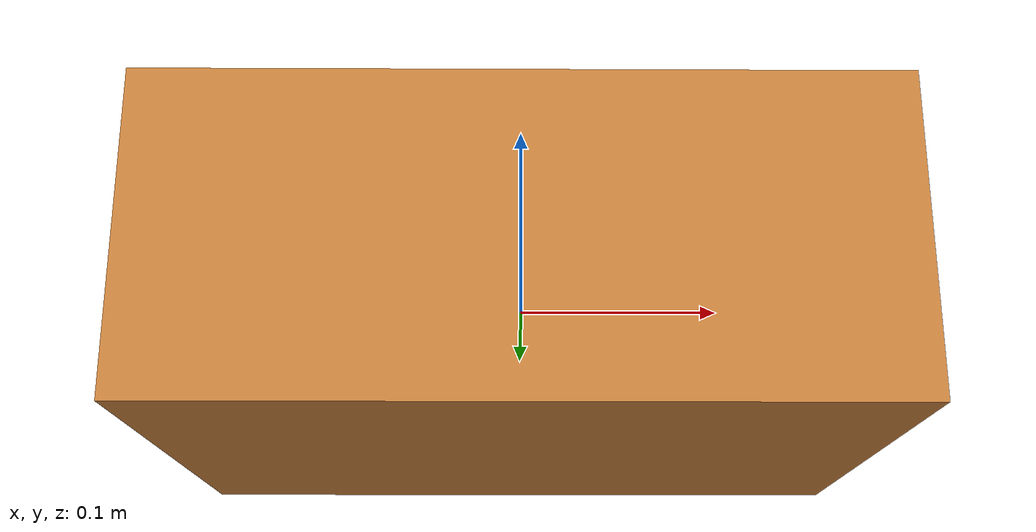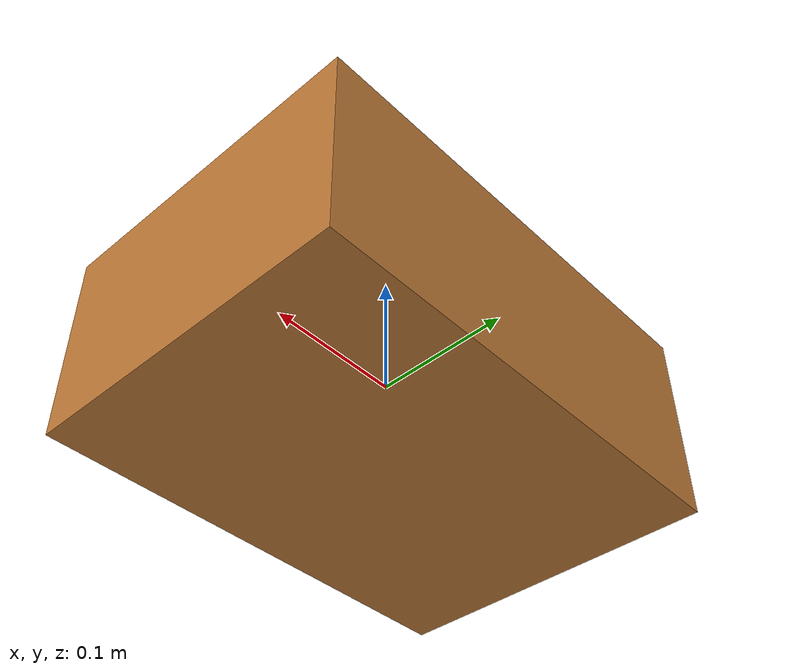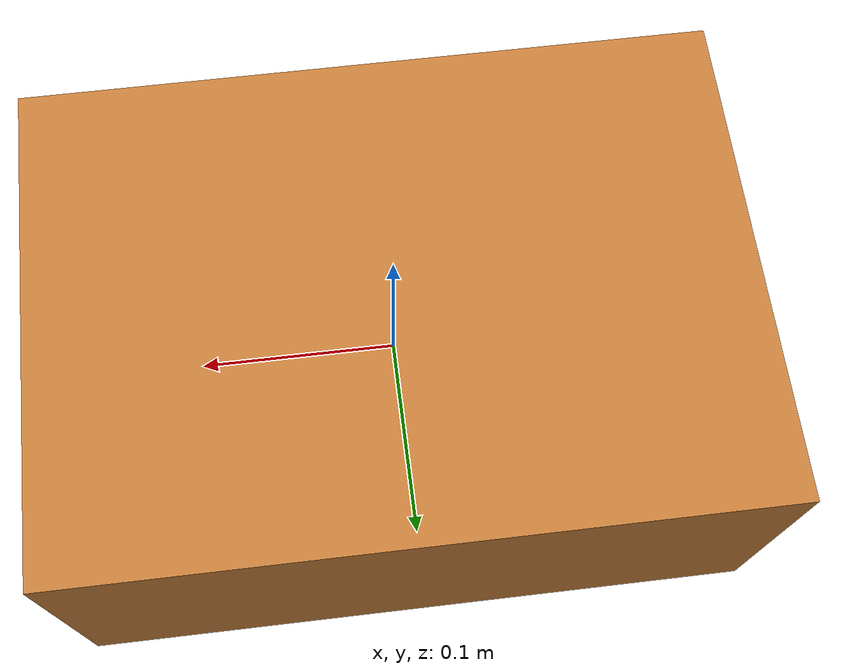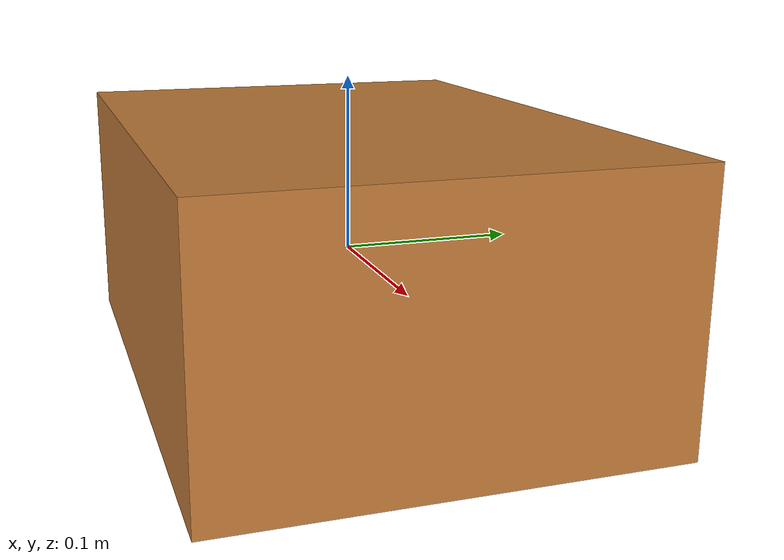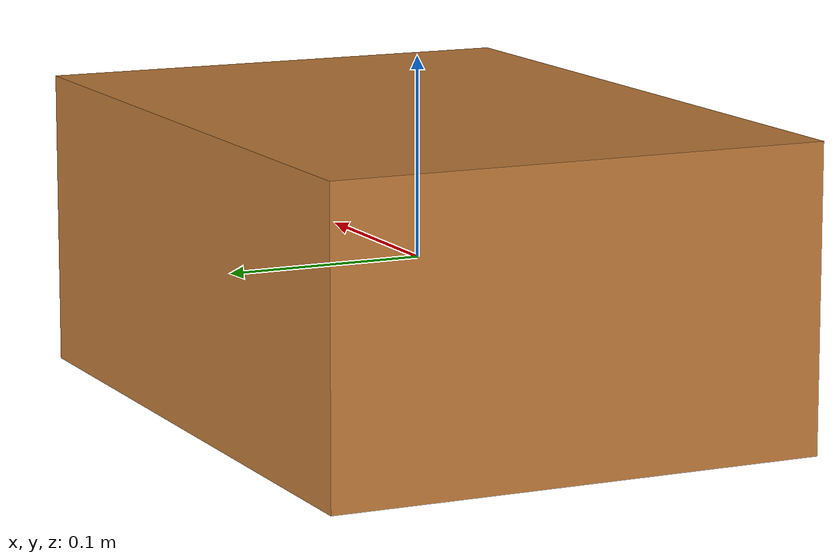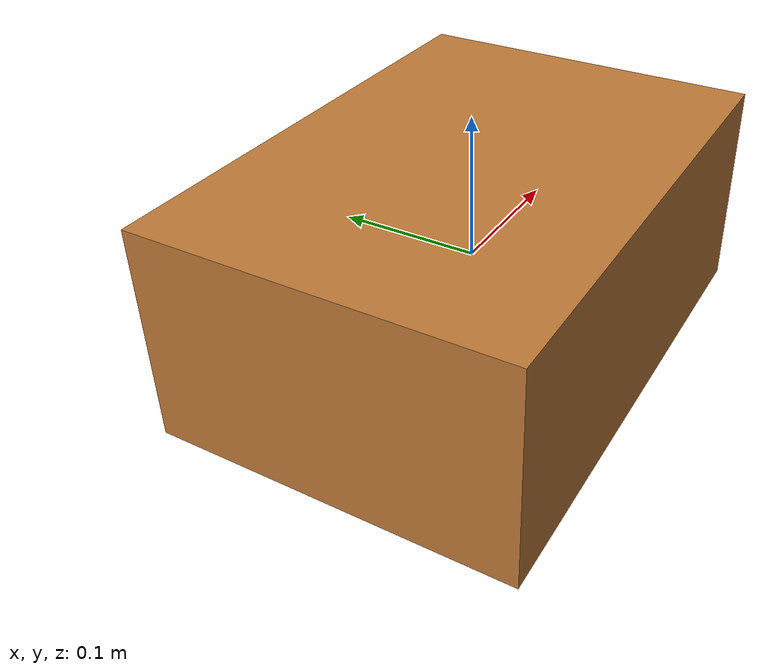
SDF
<?xml version="1.0"?>
<sdf version="1.8">
  <model name="generator_box">
    <static>false</static>
    <link name="box_link">
      <inertial>
        <mass>5.637132</mass>
        <inertia><ixx>0.03992968</ixx><iyy>0.06811534</iyy><izz>0.08690578</izz><ixy>0</ixy><ixz>0</ixz><iyz>0</iyz></inertia>
      </inertial>
      <collision name="collision">
        <geometry><box><size>0.3500 0.2500 0.1500</size></box></geometry>
        <surface><friction><ode><mu>0.9</mu><mu2>0.9</mu2></ode></friction></surface>
      </collision>
      <visual name="visual">
        <geometry><box><size>0.3500 0.2500 0.1500</size></box></geometry>
        <material><ambient>0.55 0.32 0.12 1</ambient><diffuse>0.75 0.48 0.22 1</diffuse></material>
      </visual>
    </link>
    <!-- Dev/test-only ground-truth pose (perception uses the cameras). Gazebo 6 publishes the
         model's own pose only with publish_nested_model_pose=true. -->
    <plugin filename="ignition-gazebo-pose-publisher-system" name="gz::sim::systems::PosePublisher">
      <publish_model_pose>true</publish_model_pose>
      <publish_link_pose>false</publish_link_pose>
      <publish_collision_pose>false</publish_collision_pose>
      <publish_visual_pose>false</publish_visual_pose>
      <publish_nested_model_pose>true</publish_nested_model_pose>
      <update_frequency>30</update_frequency>
      <use_pose_vector_msg>false</use_pose_vector_msg>
    </plugin>
  </model>
</sdf>
